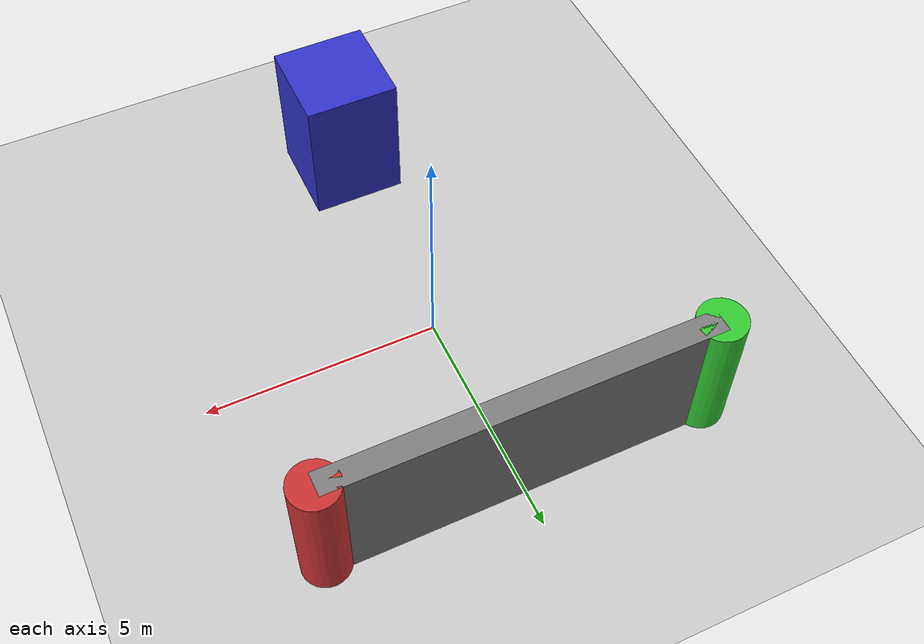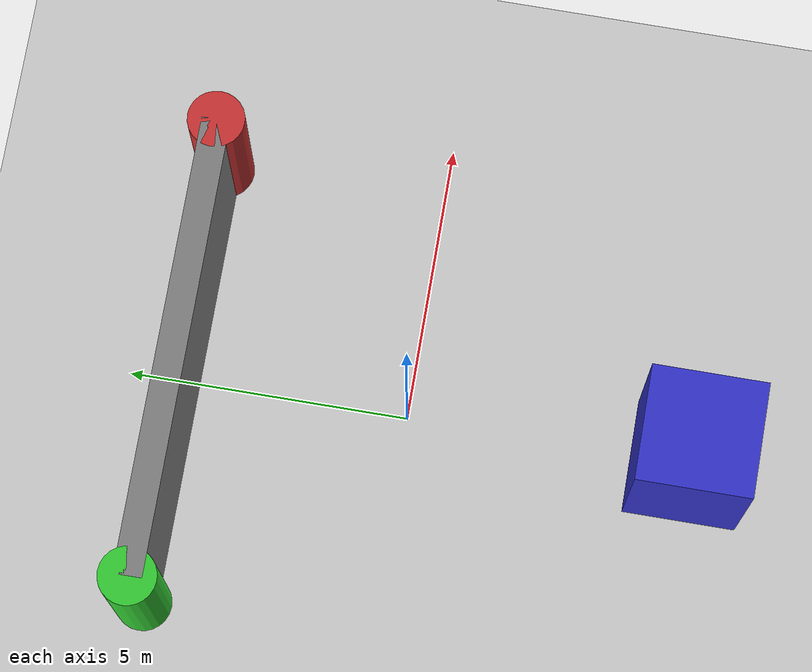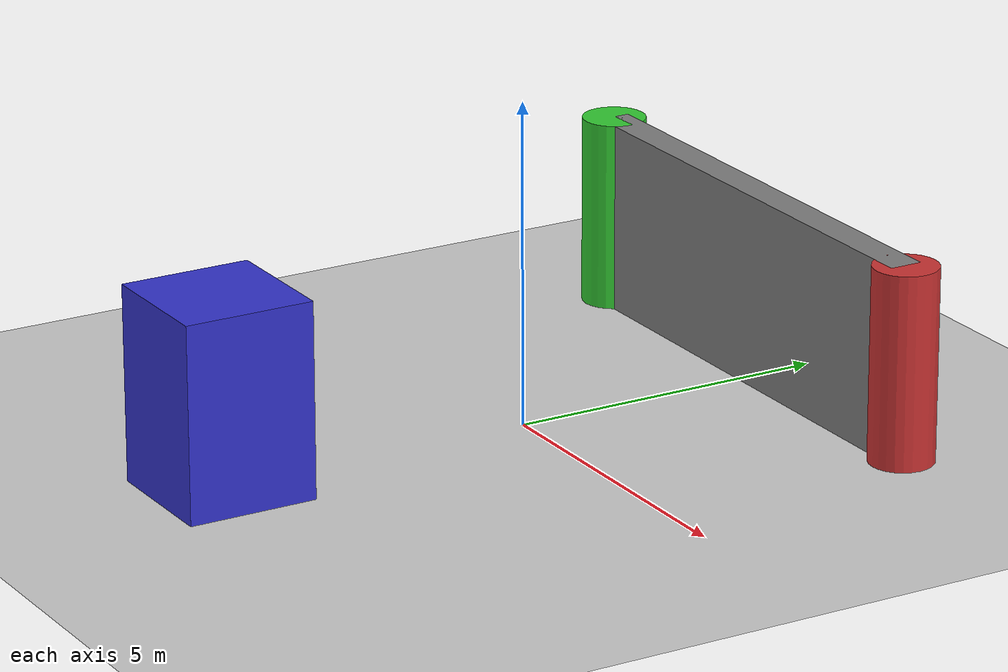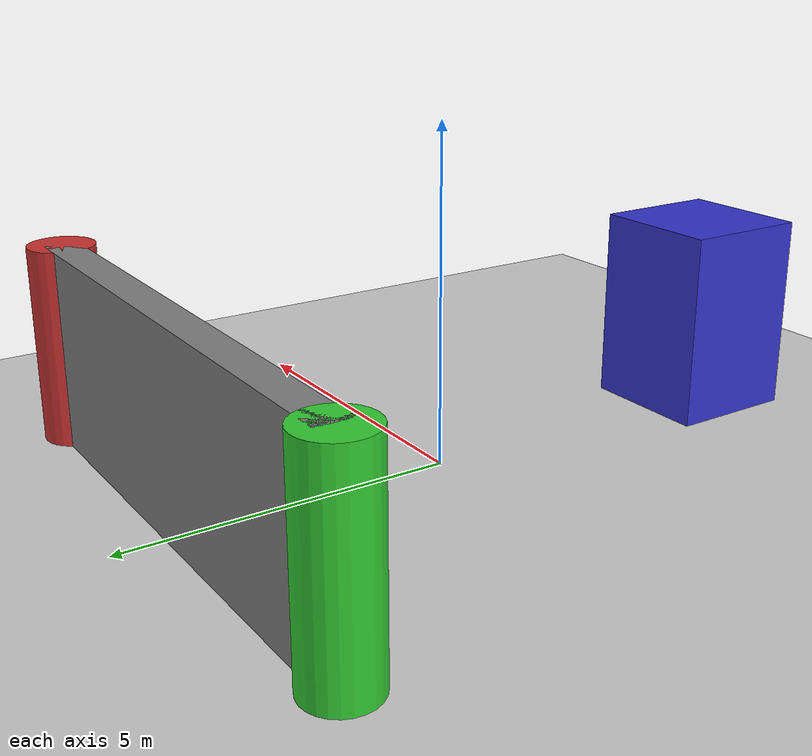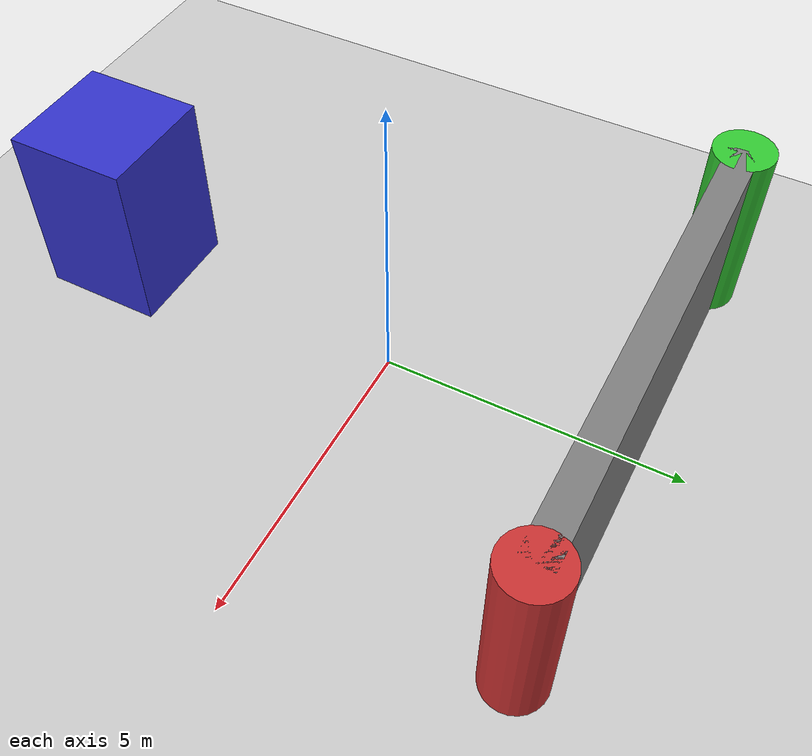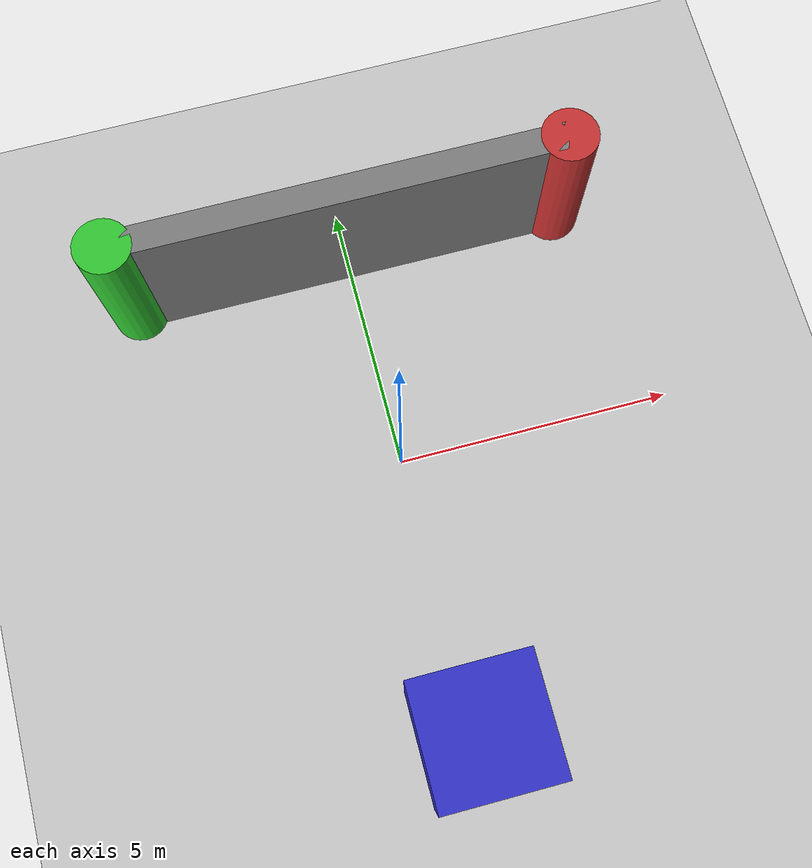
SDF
<?xml version="1.0" encoding="UTF-8"?>
<sdf version="1.9">
  <world name="obstacle_course_final">
    <physics type="ode">
      <max_step_size>0.004</max_step_size>
      <real_time_factor>1.0</real_time_factor>
      <real_time_update_rate>250</real_time_update_rate>
    </physics>
    <plugin name="gz::sim::systems::Physics" filename="gz-sim-physics-system"/>
    <plugin name="gz::sim::systems::UserCommands" filename="gz-sim-user-commands-system"/>
    <plugin name="gz::sim::systems::SceneBroadcaster" filename="gz-sim-scene-broadcaster-system"/>
    <plugin name="gz::sim::systems::Contact" filename="gz-sim-contact-system"/>
    <plugin name="gz::sim::systems::Imu" filename="gz-sim-imu-system"/>
    <plugin name="gz::sim::systems::AirPressure" filename="gz-sim-air-pressure-system"/>
    <plugin name="gz::sim::systems::ApplyLinkWrench" filename="gz-sim-apply-link-wrench-system"/>
    <plugin name="gz::sim::systems::NavSat" filename="gz-sim-navsat-system"/>
    <plugin name="gz::sim::systems::Sensors" filename="gz-sim-sensors-system">
      <render_engine>ogre2</render_engine>
    </plugin>
    <gravity>0 0 -9.8</gravity>
    <magnetic_field>6e-06 2.3e-05 -4.2e-05</magnetic_field>
    <atmosphere type="adiabatic"/>
    <scene>
      <grid>false</grid>
      <ambient>0.4 0.4 0.4 1</ambient>
      <background>0.7 0.7 0.7 1</background>
      <shadows>true</shadows>
    </scene>
    <model name="ground_plane">
      <static>true</static>
      <link name="link">
        <collision name="collision">
          <geometry>
            <plane>
              <normal>0 0 1</normal>
              <size>1 1</size>
            </plane>
          </geometry>
          <surface>
            <friction><ode/></friction>
            <bounce/>
            <contact/>
          </surface>
        </collision>
        <visual name="visual">
          <geometry>
            <plane>
              <normal>0 0 1</normal>
              <size>100 100</size>
            </plane>
          </geometry>
          <material>
            <ambient>0.8 0.8 0.8 1</ambient>
            <diffuse>0.8 0.8 0.8 1</diffuse>
            <specular>0.8 0.8 0.8 1</specular>
          </material>
        </visual>
        <pose>0 0 0 0 -0 0</pose>
        <inertial>
          <pose>0 0 0 0 -0 0</pose>
          <mass>1</mass>
          <inertia>
            <ixx>1</ixx><ixy>0</ixy><ixz>0</ixz>
            <iyy>1</iyy><iyz>0</iyz>
            <izz>1</izz>
          </inertia>
        </inertial>
        <enable_wind>false</enable_wind>
      </link>
      <pose>0 0 0 0 -0 0</pose>
      <self_collide>false</self_collide>
    </model>
    <light name="sunUTC" type="directional">
      <pose>0 0 500 0 -0 0</pose>
      <cast_shadows>true</cast_shadows>
      <intensity>1</intensity>
      <direction>0.001 0.625 -0.78</direction>
      <diffuse>0.904 0.904 0.904 1</diffuse>
      <specular>0.271 0.271 0.271 1</specular>
      <attenuation>
        <range>2000</range>
        <linear>0</linear>
        <constant>1</constant>
        <quadratic>0</quadratic>
      </attenuation>
      <spot>
        <inner_angle>0</inner_angle>
        <outer_angle>0</outer_angle>
        <falloff>0</falloff>
      </spot>
    </light>
    <spherical_coordinates>
      <surface_model>EARTH_WGS84</surface_model>
      <world_frame_orientation>ENU</world_frame_orientation>
      <latitude_deg>47.397971057728974</latitude_deg>
      <longitude_deg> 8.546163739800146</longitude_deg>
      <elevation>0</elevation>
    </spherical_coordinates>

    <!-- CUSTOM OBSTACLES                                -->
    <model name="center_wall">
      <static>true</static>
      <pose>0 4 1.5 0 0 0</pose>
      <link name="link">
        <collision name="collision">
          <geometry><box><size>8 0.5 3</size></box></geometry>
        </collision>
        <visual name="visual">
          <geometry><box><size>8 0.5 3</size></box></geometry>
          <material>
            <ambient>0.5 0.5 0.5 1</ambient>
            <diffuse>0.5 0.5 0.5 1</diffuse>
          </material>
        </visual>
      </link>
    </model>
    <model name="pillar_1">
      <static>true</static>
      <pose>4 4 1.5 0 0 0</pose>
      <link name="link">
        <collision name="collision">
          <geometry><cylinder><radius>0.5</radius><length>3</length></cylinder></geometry>
        </collision>
        <visual name="visual">
          <geometry><cylinder><radius>0.5</radius><length>3</length></cylinder></geometry>
          <material>
            <ambient>0.8 0.2 0.2 1</ambient>
            <diffuse>0.8 0.2 0.2 1</diffuse>
          </material>
        </visual>
      </link>
    </model>
    <model name="pillar_2">
      <static>true</static>
      <pose>-4 4 1.5 0 0 0</pose>
      <link name="link">
        <collision name="collision">
          <geometry><cylinder><radius>0.5</radius><length>3</length></cylinder></geometry>
        </collision>
        <visual name="visual">
          <geometry><cylinder><radius>0.5</radius><length>3</length></cylinder></geometry>
          <material>
            <ambient>0.2 0.8 0.2 1</ambient>
            <diffuse>0.2 0.8 0.2 1</diffuse>
          </material>
        </visual>
      </link>
    </model>
    <model name="pillar_3">
      <static>true</static>
      <pose>0 -5 1.5 0 0 0</pose>
      <link name="link">
        <collision name="collision">
          <geometry><box><size>2 2 3</size></box></geometry>
        </collision>
        <visual name="visual">
          <geometry><box><size>2 2 3</size></box></geometry>
          <material>
            <ambient>0.2 0.2 0.8 1</ambient>
            <diffuse>0.2 0.2 0.8 1</diffuse>
          </material>
        </visual>
      </link>
    </model>
  </world>
</sdf>
